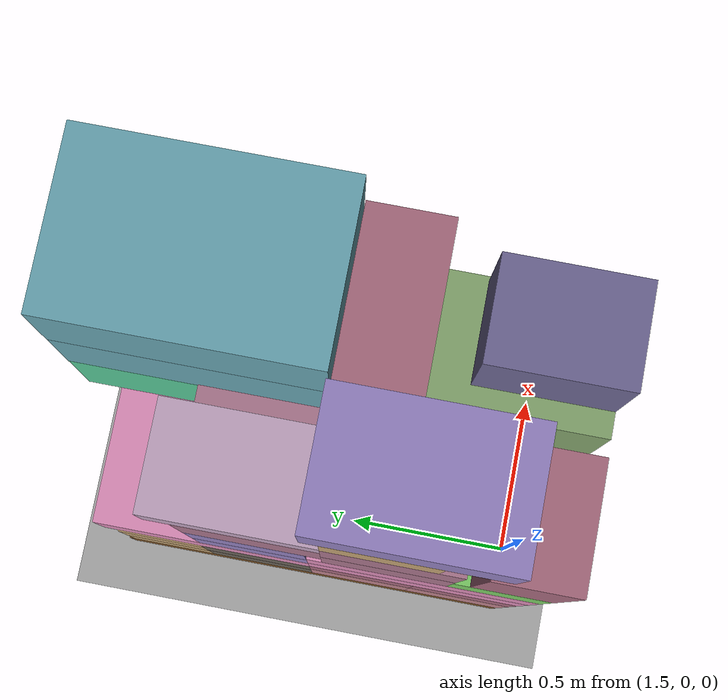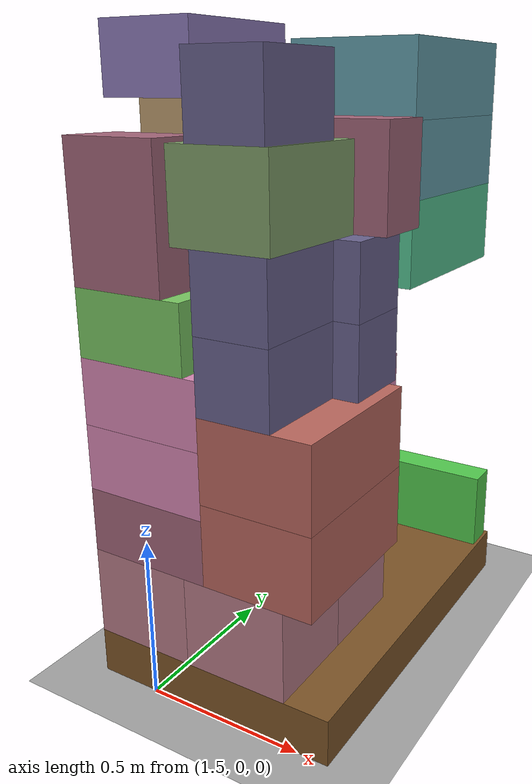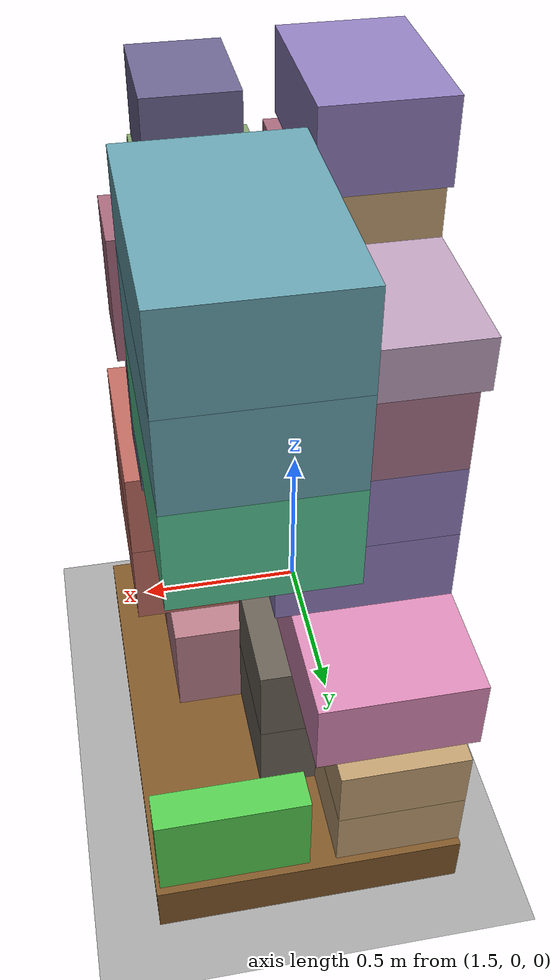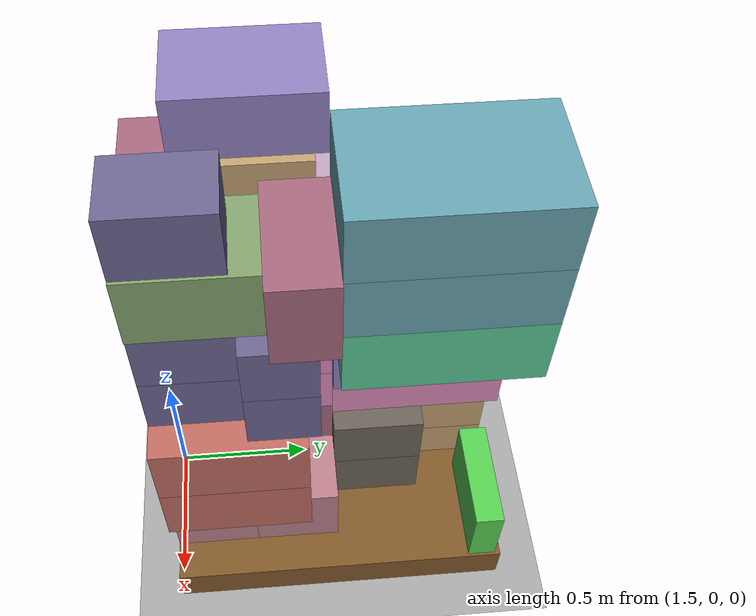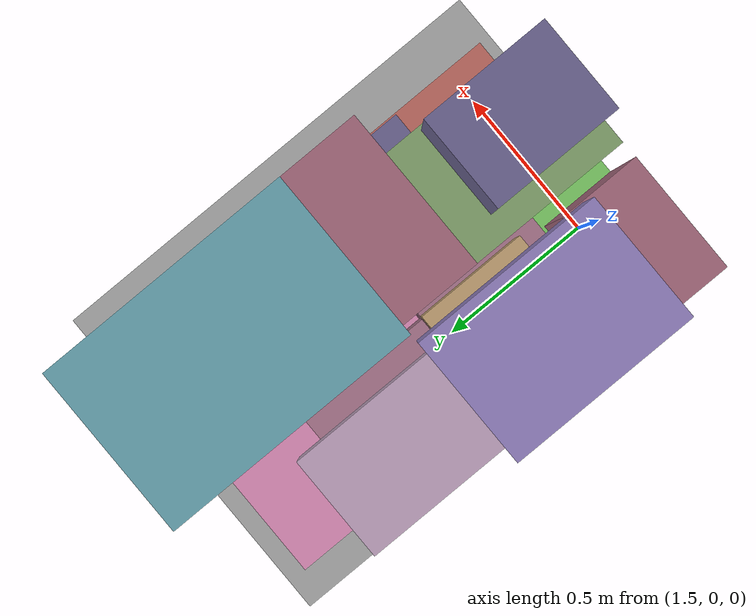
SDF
<sdf version="1.10">
 <world name="pallet_towers">
  <model name="ground_plane">
   <static>true</static>
   <link name="link">
    <collision name="collision">
     <geometry><plane><normal>0 0 1</normal><size>30 30</size></plane></geometry>
     <surface>
      <friction><ode><mu>0.55</mu><mu2>0.55</mu2></ode></friction>
      <bounce><restitution_coefficient>0</restitution_coefficient><threshold>100000</threshold></bounce>
      <contact><ode><kp>1000000</kp><kd>100</kd><max_vel>1</max_vel><min_depth>0.0005</min_depth></ode></contact>
     </surface>
    </collision>
    <visual name="visual">
     <geometry><plane><normal>0 0 1</normal><size>30 30</size></plane></geometry>
     <material><ambient>0.65 0.65 0.65 1</ambient><diffuse>0.65 0.65 0.65 1</diffuse></material>
    </visual>
   </link>
  </model>
  <model name="pallet_02_P02">
   <static>false</static>
   <pose>1.7 0.6 0.072 0 0 0</pose>
   <link name="body">
    <inertial>
     <mass>25</mass>
     <inertia>
      <ixx>3.0432</ixx>
      <ixy>0</ixy>
      <ixz>0</ixz>
      <iyy>1.37653333</iyy>
      <iyz>0</iyz>
      <izz>4.33333333</izz>
     </inertia>
    </inertial>
    <collision name="collision">
     <geometry><box><size>0.8 1.2 0.144</size></box></geometry>
     <surface>
      <friction><ode><mu>0.55</mu><mu2>0.55</mu2></ode></friction>
      <bounce><restitution_coefficient>0</restitution_coefficient><threshold>100000</threshold></bounce>
      <contact><ode><kp>1000000</kp><kd>100</kd><max_vel>1</max_vel><min_depth>0.0005</min_depth></ode></contact>
     </surface>
    </collision>
    <visual name="visual">
     <geometry><box><size>0.8 1.2 0.144</size></box></geometry>
     <material>
      <ambient>0.5 0.34 0.16 1</ambient>
      <diffuse>0.5 0.34 0.16 1</diffuse>
      <specular>0.05 0.05 0.05 1</specular>
     </material>
    </visual>
   </link>
  </model>
  <model name="box_p02_0001_EGGS_001_EGGS">
   <static>false</static>
   <pose>1.465 0.15 0.284 0 0 0</pose>
   <link name="body">
    <inertial>
     <mass>18</mass>
     <inertia><ixx>0.2526</ixx><ixy>0</ixy><ixz>0</ixz><iyy>0.28095</iyy><iyz>0</iyz><izz>0.29835</izz></inertia>
    </inertial>
    <collision name="collision">
     <geometry><box><size>0.33 0.3 0.28</size></box></geometry>
     <surface>
      <friction><ode><mu>0.55</mu><mu2>0.55</mu2></ode></friction>
      <bounce><restitution_coefficient>0</restitution_coefficient><threshold>100000</threshold></bounce>
      <contact><ode><kp>1000000</kp><kd>100</kd><max_vel>1</max_vel><min_depth>0.0005</min_depth></ode></contact>
     </surface>
    </collision>
    <visual name="visual">
     <geometry><box><size>0.33 0.3 0.28</size></box></geometry>
     <material>
      <ambient>0.725490196 0.494117647 0.537254902 1</ambient>
      <diffuse>0.725490196 0.494117647 0.537254902 1</diffuse>
      <specular>0.05 0.05 0.05 1</specular>
     </material>
    </visual>
   </link>
  </model>
  <model name="box_p02_0002_EGGS_002_EGGS">
   <static>false</static>
   <pose>1.795 0.15 0.284 0 0 0</pose>
   <link name="body">
    <inertial>
     <mass>18</mass>
     <inertia><ixx>0.2526</ixx><ixy>0</ixy><ixz>0</ixz><iyy>0.28095</iyy><iyz>0</iyz><izz>0.29835</izz></inertia>
    </inertial>
    <collision name="collision">
     <geometry><box><size>0.33 0.3 0.28</size></box></geometry>
     <surface>
      <friction><ode><mu>0.55</mu><mu2>0.55</mu2></ode></friction>
      <bounce><restitution_coefficient>0</restitution_coefficient><threshold>100000</threshold></bounce>
      <contact><ode><kp>1000000</kp><kd>100</kd><max_vel>1</max_vel><min_depth>0.0005</min_depth></ode></contact>
     </surface>
    </collision>
    <visual name="visual">
     <geometry><box><size>0.33 0.3 0.28</size></box></geometry>
     <material>
      <ambient>0.725490196 0.494117647 0.537254902 1</ambient>
      <diffuse>0.725490196 0.494117647 0.537254902 1</diffuse>
      <specular>0.05 0.05 0.05 1</specular>
     </material>
    </visual>
   </link>
  </model>
  <model name="box_p02_0003_EGGS_003_EGGS">
   <static>false</static>
   <pose>1.465 0.45 0.284 0 0 0</pose>
   <link name="body">
    <inertial>
     <mass>18</mass>
     <inertia><ixx>0.2526</ixx><ixy>0</ixy><ixz>0</ixz><iyy>0.28095</iyy><iyz>0</iyz><izz>0.29835</izz></inertia>
    </inertial>
    <collision name="collision">
     <geometry><box><size>0.33 0.3 0.28</size></box></geometry>
     <surface>
      <friction><ode><mu>0.55</mu><mu2>0.55</mu2></ode></friction>
      <bounce><restitution_coefficient>0</restitution_coefficient><threshold>100000</threshold></bounce>
      <contact><ode><kp>1000000</kp><kd>100</kd><max_vel>1</max_vel><min_depth>0.0005</min_depth></ode></contact>
     </surface>
    </collision>
    <visual name="visual">
     <geometry><box><size>0.33 0.3 0.28</size></box></geometry>
     <material>
      <ambient>0.725490196 0.494117647 0.537254902 1</ambient>
      <diffuse>0.725490196 0.494117647 0.537254902 1</diffuse>
      <specular>0.05 0.05 0.05 1</specular>
     </material>
    </visual>
   </link>
  </model>
  <model name="box_p02_0004_EGGS_004_EGGS">
   <static>false</static>
   <pose>1.795 0.45 0.284 0 0 0</pose>
   <link name="body">
    <inertial>
     <mass>18</mass>
     <inertia><ixx>0.2526</ixx><ixy>0</ixy><ixz>0</ixz><iyy>0.28095</iyy><iyz>0</iyz><izz>0.29835</izz></inertia>
    </inertial>
    <collision name="collision">
     <geometry><box><size>0.33 0.3 0.28</size></box></geometry>
     <surface>
      <friction><ode><mu>0.55</mu><mu2>0.55</mu2></ode></friction>
      <bounce><restitution_coefficient>0</restitution_coefficient><threshold>100000</threshold></bounce>
      <contact><ode><kp>1000000</kp><kd>100</kd><max_vel>1</max_vel><min_depth>0.0005</min_depth></ode></contact>
     </surface>
    </collision>
    <visual name="visual">
     <geometry><box><size>0.33 0.3 0.28</size></box></geometry>
     <material>
      <ambient>0.725490196 0.494117647 0.537254902 1</ambient>
      <diffuse>0.725490196 0.494117647 0.537254902 1</diffuse>
      <specular>0.05 0.05 0.05 1</specular>
     </material>
    </visual>
   </link>
  </model>
  <model name="box_p02_0005_FLOUR_001_FLOUR">
   <static>false</static>
   <pose>1.54 0.76 0.254 0 0 0</pose>
   <link name="body">
    <inertial>
     <mass>15</mass>
     <inertia><ixx>0.1885</ixx><ixy>0</ixy><ixz>0</ixz><iyy>0.3485</iyy><iyz>0</iyz><izz>0.416</izz></inertia>
    </inertial>
    <collision name="collision">
     <geometry><box><size>0.48 0.32 0.22</size></box></geometry>
     <surface>
      <friction><ode><mu>0.55</mu><mu2>0.55</mu2></ode></friction>
      <bounce><restitution_coefficient>0</restitution_coefficient><threshold>100000</threshold></bounce>
      <contact><ode><kp>1000000</kp><kd>100</kd><max_vel>1</max_vel><min_depth>0.0005</min_depth></ode></contact>
     </surface>
    </collision>
    <visual name="visual">
     <geometry><box><size>0.48 0.32 0.22</size></box></geometry>
     <material>
      <ambient>0.411764706 0.380392157 0.341176471 1</ambient>
      <diffuse>0.411764706 0.380392157 0.341176471 1</diffuse>
      <specular>0.05 0.05 0.05 1</specular>
     </material>
    </visual>
   </link>
  </model>
  <model name="box_p02_0007_FLOUR_003_FLOUR">
   <static>false</static>
   <pose>1.54 0.76 0.474 0 0 0</pose>
   <link name="body">
    <inertial>
     <mass>15</mass>
     <inertia><ixx>0.1885</ixx><ixy>0</ixy><ixz>0</ixz><iyy>0.3485</iyy><iyz>0</iyz><izz>0.416</izz></inertia>
    </inertial>
    <collision name="collision">
     <geometry><box><size>0.48 0.32 0.22</size></box></geometry>
     <surface>
      <friction><ode><mu>0.55</mu><mu2>0.55</mu2></ode></friction>
      <bounce><restitution_coefficient>0</restitution_coefficient><threshold>100000</threshold></bounce>
      <contact><ode><kp>1000000</kp><kd>100</kd><max_vel>1</max_vel><min_depth>0.0005</min_depth></ode></contact>
     </surface>
    </collision>
    <visual name="visual">
     <geometry><box><size>0.48 0.32 0.22</size></box></geometry>
     <material>
      <ambient>0.411764706 0.380392157 0.341176471 1</ambient>
      <diffuse>0.411764706 0.380392157 0.341176471 1</diffuse>
      <specular>0.05 0.05 0.05 1</specular>
     </material>
    </visual>
   </link>
  </model>
  <model name="box_p02_0008_HONEY_001_HONEY">
   <static>false</static>
   <pose>1.465 1.05 0.229 0 0 0</pose>
   <link name="body">
    <inertial>
     <mass>8</mass>
     <inertia>
      <ixx>0.0643333333</ixx>
      <ixy>0</ixy>
      <ixz>0</ixz>
      <iyy>0.0918666667</iyy>
      <iyz>0</iyz>
      <izz>0.117666667</izz>
     </inertia>
    </inertial>
    <collision name="collision">
     <geometry><box><size>0.33 0.26 0.17</size></box></geometry>
     <surface>
      <friction><ode><mu>0.55</mu><mu2>0.55</mu2></ode></friction>
      <bounce><restitution_coefficient>0</restitution_coefficient><threshold>100000</threshold></bounce>
      <contact><ode><kp>1000000</kp><kd>100</kd><max_vel>1</max_vel><min_depth>0.0005</min_depth></ode></contact>
     </surface>
    </collision>
    <visual name="visual">
     <geometry><box><size>0.33 0.26 0.17</size></box></geometry>
     <material>
      <ambient>0.752941176 0.623529412 0.443137255 1</ambient>
      <diffuse>0.752941176 0.623529412 0.443137255 1</diffuse>
      <specular>0.05 0.05 0.05 1</specular>
     </material>
    </visual>
   </link>
  </model>
  <model name="box_p02_0009_HONEY_002_HONEY">
   <static>false</static>
   <pose>1.465 1.05 0.399 0 0 0</pose>
   <link name="body">
    <inertial>
     <mass>8</mass>
     <inertia>
      <ixx>0.0643333333</ixx>
      <ixy>0</ixy>
      <ixz>0</ixz>
      <iyy>0.0918666667</iyy>
      <iyz>0</iyz>
      <izz>0.117666667</izz>
     </inertia>
    </inertial>
    <collision name="collision">
     <geometry><box><size>0.33 0.26 0.17</size></box></geometry>
     <surface>
      <friction><ode><mu>0.55</mu><mu2>0.55</mu2></ode></friction>
      <bounce><restitution_coefficient>0</restitution_coefficient><threshold>100000</threshold></bounce>
      <contact><ode><kp>1000000</kp><kd>100</kd><max_vel>1</max_vel><min_depth>0.0005</min_depth></ode></contact>
     </surface>
    </collision>
    <visual name="visual">
     <geometry><box><size>0.33 0.26 0.17</size></box></geometry>
     <material>
      <ambient>0.752941176 0.623529412 0.443137255 1</ambient>
      <diffuse>0.752941176 0.623529412 0.443137255 1</diffuse>
      <specular>0.05 0.05 0.05 1</specular>
     </material>
    </visual>
   </link>
  </model>
  <model name="box_p02_0011_ICECRM_002_ICECRM">
   <static>false</static>
   <pose>1.5 0.15 0.524 0 0 0</pose>
   <link name="body">
    <inertial>
     <mass>8</mass>
     <inertia>
      <ixx>0.0866666667</ixx>
      <ixy>0</ixy>
      <ixz>0</ixz>
      <iyy>0.133333333</iyy>
      <iyz>0</iyz>
      <izz>0.166666667</izz>
     </inertia>
    </inertial>
    <collision name="collision">
     <geometry><box><size>0.4 0.3 0.2</size></box></geometry>
     <surface>
      <friction><ode><mu>0.55</mu><mu2>0.55</mu2></ode></friction>
      <bounce><restitution_coefficient>0</restitution_coefficient><threshold>100000</threshold></bounce>
      <contact><ode><kp>1000000</kp><kd>100</kd><max_vel>1</max_vel><min_depth>0.0005</min_depth></ode></contact>
     </surface>
    </collision>
    <visual name="visual">
     <geometry><box><size>0.4 0.3 0.2</size></box></geometry>
     <material>
      <ambient>0.643137255 0.403921569 0.482352941 1</ambient>
      <diffuse>0.643137255 0.403921569 0.482352941 1</diffuse>
      <specular>0.05 0.05 0.05 1</specular>
     </material>
    </visual>
   </link>
  </model>
  <model name="box_p02_0012_ICECRM_003_ICECRM">
   <static>false</static>
   <pose>1.5 0.45 0.524 0 0 0</pose>
   <link name="body">
    <inertial>
     <mass>8</mass>
     <inertia>
      <ixx>0.0866666667</ixx>
      <ixy>0</ixy>
      <ixz>0</ixz>
      <iyy>0.133333333</iyy>
      <iyz>0</iyz>
      <izz>0.166666667</izz>
     </inertia>
    </inertial>
    <collision name="collision">
     <geometry><box><size>0.4 0.3 0.2</size></box></geometry>
     <surface>
      <friction><ode><mu>0.55</mu><mu2>0.55</mu2></ode></friction>
      <bounce><restitution_coefficient>0</restitution_coefficient><threshold>100000</threshold></bounce>
      <contact><ode><kp>1000000</kp><kd>100</kd><max_vel>1</max_vel><min_depth>0.0005</min_depth></ode></contact>
     </surface>
    </collision>
    <visual name="visual">
     <geometry><box><size>0.4 0.3 0.2</size></box></geometry>
     <material>
      <ambient>0.643137255 0.403921569 0.482352941 1</ambient>
      <diffuse>0.643137255 0.403921569 0.482352941 1</diffuse>
      <specular>0.05 0.05 0.05 1</specular>
     </material>
    </visual>
   </link>
  </model>
  <model name="box_p02_0013_ONION_001_ONION">
   <static>false</static>
   <pose>1.875 0.25 0.549 0 0 0</pose>
   <link name="body">
    <inertial>
     <mass>10</mass>
     <inertia>
      <ixx>0.260416667</ixx>
      <ixy>0</ixy>
      <ixz>0</ixz>
      <iyy>0.154166667</iyy>
      <iyz>0</iyz>
      <izz>0.310416667</izz>
     </inertia>
    </inertial>
    <collision name="collision">
     <geometry><box><size>0.35 0.5 0.25</size></box></geometry>
     <surface>
      <friction><ode><mu>0.55</mu><mu2>0.55</mu2></ode></friction>
      <bounce><restitution_coefficient>0</restitution_coefficient><threshold>100000</threshold></bounce>
      <contact><ode><kp>1000000</kp><kd>100</kd><max_vel>1</max_vel><min_depth>0.0005</min_depth></ode></contact>
     </surface>
    </collision>
    <visual name="visual">
     <geometry><box><size>0.35 0.5 0.25</size></box></geometry>
     <material>
      <ambient>0.741176471 0.411764706 0.376470588 1</ambient>
      <diffuse>0.741176471 0.411764706 0.376470588 1</diffuse>
      <specular>0.05 0.05 0.05 1</specular>
     </material>
    </visual>
   </link>
  </model>
  <model name="box_p02_0014_ONION_002_ONION">
   <static>false</static>
   <pose>1.875 0.25 0.799 0 0 0</pose>
   <link name="body">
    <inertial>
     <mass>10</mass>
     <inertia>
      <ixx>0.260416667</ixx>
      <ixy>0</ixy>
      <ixz>0</ixz>
      <iyy>0.154166667</iyy>
      <iyz>0</iyz>
      <izz>0.310416667</izz>
     </inertia>
    </inertial>
    <collision name="collision">
     <geometry><box><size>0.35 0.5 0.25</size></box></geometry>
     <surface>
      <friction><ode><mu>0.55</mu><mu2>0.55</mu2></ode></friction>
      <bounce><restitution_coefficient>0</restitution_coefficient><threshold>100000</threshold></bounce>
      <contact><ode><kp>1000000</kp><kd>100</kd><max_vel>1</max_vel><min_depth>0.0005</min_depth></ode></contact>
     </surface>
    </collision>
    <visual name="visual">
     <geometry><box><size>0.35 0.5 0.25</size></box></geometry>
     <material>
      <ambient>0.741176471 0.411764706 0.376470588 1</ambient>
      <diffuse>0.741176471 0.411764706 0.376470588 1</diffuse>
      <specular>0.05 0.05 0.05 1</specular>
     </material>
    </visual>
   </link>
  </model>
  <model name="box_p02_0015_POTATO_001_POTATO">
   <static>false</static>
   <pose>1.5 0.3 0.724 0 0 0</pose>
   <link name="body">
    <inertial>
     <mass>25</mass>
     <inertia>
      <ixx>0.833333333</ixx>
      <ixy>0</ixy>
      <ixz>0</ixz>
      <iyy>0.416666667</iyy>
      <iyz>0</iyz>
      <izz>1.08333333</izz>
     </inertia>
    </inertial>
    <collision name="collision">
     <geometry><box><size>0.4 0.6 0.2</size></box></geometry>
     <surface>
      <friction><ode><mu>0.55</mu><mu2>0.55</mu2></ode></friction>
      <bounce><restitution_coefficient>0</restitution_coefficient><threshold>100000</threshold></bounce>
      <contact><ode><kp>1000000</kp><kd>100</kd><max_vel>1</max_vel><min_depth>0.0005</min_depth></ode></contact>
     </surface>
    </collision>
    <visual name="visual">
     <geometry><box><size>0.4 0.6 0.2</size></box></geometry>
     <material>
      <ambient>0.854901961 0.541176471 0.71372549 1</ambient>
      <diffuse>0.854901961 0.541176471 0.71372549 1</diffuse>
      <specular>0.05 0.05 0.05 1</specular>
     </material>
    </visual>
   </link>
  </model>
  <model name="box_p02_0016_POTATO_002_POTATO">
   <static>false</static>
   <pose>1.5 0.3 0.924 0 0 0</pose>
   <link name="body">
    <inertial>
     <mass>25</mass>
     <inertia>
      <ixx>0.833333333</ixx>
      <ixy>0</ixy>
      <ixz>0</ixz>
      <iyy>0.416666667</iyy>
      <iyz>0</iyz>
      <izz>1.08333333</izz>
     </inertia>
    </inertial>
    <collision name="collision">
     <geometry><box><size>0.4 0.6 0.2</size></box></geometry>
     <surface>
      <friction><ode><mu>0.55</mu><mu2>0.55</mu2></ode></friction>
      <bounce><restitution_coefficient>0</restitution_coefficient><threshold>100000</threshold></bounce>
      <contact><ode><kp>1000000</kp><kd>100</kd><max_vel>1</max_vel><min_depth>0.0005</min_depth></ode></contact>
     </surface>
    </collision>
    <visual name="visual">
     <geometry><box><size>0.4 0.6 0.2</size></box></geometry>
     <material>
      <ambient>0.854901961 0.541176471 0.71372549 1</ambient>
      <diffuse>0.854901961 0.541176471 0.71372549 1</diffuse>
      <specular>0.05 0.05 0.05 1</specular>
     </material>
    </visual>
   </link>
  </model>
  <model name="box_p02_0017_POTATO_003_POTATO">
   <static>false</static>
   <pose>1.5 0.9 0.684 0 0 0</pose>
   <link name="body">
    <inertial>
     <mass>25</mass>
     <inertia>
      <ixx>0.833333333</ixx>
      <ixy>0</ixy>
      <ixz>0</ixz>
      <iyy>0.416666667</iyy>
      <iyz>0</iyz>
      <izz>1.08333333</izz>
     </inertia>
    </inertial>
    <collision name="collision">
     <geometry><box><size>0.4 0.6 0.2</size></box></geometry>
     <surface>
      <friction><ode><mu>0.55</mu><mu2>0.55</mu2></ode></friction>
      <bounce><restitution_coefficient>0</restitution_coefficient><threshold>100000</threshold></bounce>
      <contact><ode><kp>1000000</kp><kd>100</kd><max_vel>1</max_vel><min_depth>0.0005</min_depth></ode></contact>
     </surface>
    </collision>
    <visual name="visual">
     <geometry><box><size>0.4 0.6 0.2</size></box></geometry>
     <material>
      <ambient>0.854901961 0.541176471 0.71372549 1</ambient>
      <diffuse>0.854901961 0.541176471 0.71372549 1</diffuse>
      <specular>0.05 0.05 0.05 1</specular>
     </material>
    </visual>
   </link>
  </model>
  <model name="box_p02_0020_RICE_003_RICE">
   <static>false</static>
   <pose>1.52 0.75 0.884 0 0 0</pose>
   <link name="body">
    <inertial>
     <mass>20</mass>
     <inertia>
      <ixx>0.216666667</ixx>
      <ixy>0</ixy>
      <ixz>0</ixz>
      <iyy>0.389333333</iyy>
      <iyz>0</iyz>
      <izz>0.472666667</izz>
     </inertia>
    </inertial>
    <collision name="collision">
     <geometry><box><size>0.44 0.3 0.2</size></box></geometry>
     <surface>
      <friction><ode><mu>0.55</mu><mu2>0.55</mu2></ode></friction>
      <bounce><restitution_coefficient>0</restitution_coefficient><threshold>100000</threshold></bounce>
      <contact><ode><kp>1000000</kp><kd>100</kd><max_vel>1</max_vel><min_depth>0.0005</min_depth></ode></contact>
     </surface>
    </collision>
    <visual name="visual">
     <geometry><box><size>0.44 0.3 0.2</size></box></geometry>
     <material>
      <ambient>0.564705882 0.494117647 0.741176471 1</ambient>
      <diffuse>0.564705882 0.494117647 0.741176471 1</diffuse>
      <specular>0.05 0.05 0.05 1</specular>
     </material>
    </visual>
   </link>
  </model>
  <model name="box_p02_0021_RICE_004_RICE">
   <static>false</static>
   <pose>1.52 0.75 1.084 0 0 0</pose>
   <link name="body">
    <inertial>
     <mass>20</mass>
     <inertia>
      <ixx>0.216666667</ixx>
      <ixy>0</ixy>
      <ixz>0</ixz>
      <iyy>0.389333333</iyy>
      <iyz>0</iyz>
      <izz>0.472666667</izz>
     </inertia>
    </inertial>
    <collision name="collision">
     <geometry><box><size>0.44 0.3 0.2</size></box></geometry>
     <surface>
      <friction><ode><mu>0.55</mu><mu2>0.55</mu2></ode></friction>
      <bounce><restitution_coefficient>0</restitution_coefficient><threshold>100000</threshold></bounce>
      <contact><ode><kp>1000000</kp><kd>100</kd><max_vel>1</max_vel><min_depth>0.0005</min_depth></ode></contact>
     </surface>
    </collision>
    <visual name="visual">
     <geometry><box><size>0.44 0.3 0.2</size></box></geometry>
     <material>
      <ambient>0.564705882 0.494117647 0.741176471 1</ambient>
      <diffuse>0.564705882 0.494117647 0.741176471 1</diffuse>
      <specular>0.05 0.05 0.05 1</specular>
     </material>
    </visual>
   </link>
  </model>
  <model name="box_p02_0022_SUGAR_001_SUGAR">
   <static>false</static>
   <pose>1.815 0.155 1.034 0 0 0</pose>
   <link name="body">
    <inertial>
     <mass>10</mass>
     <inertia>
      <ixx>0.120416667</ixx>
      <ixy>0</ixy>
      <ixz>0</ixz>
      <iyy>0.0844166667</iyy>
      <iyz>0</iyz>
      <izz>0.124166667</izz>
     </inertia>
    </inertial>
    <collision name="collision">
     <geometry><box><size>0.23 0.31 0.22</size></box></geometry>
     <surface>
      <friction><ode><mu>0.55</mu><mu2>0.55</mu2></ode></friction>
      <bounce><restitution_coefficient>0</restitution_coefficient><threshold>100000</threshold></bounce>
      <contact><ode><kp>1000000</kp><kd>100</kd><max_vel>1</max_vel><min_depth>0.0005</min_depth></ode></contact>
     </surface>
    </collision>
    <visual name="visual">
     <geometry><box><size>0.23 0.31 0.22</size></box></geometry>
     <material>
      <ambient>0.419607843 0.392156863 0.564705882 1</ambient>
      <diffuse>0.419607843 0.392156863 0.564705882 1</diffuse>
      <specular>0.05 0.05 0.05 1</specular>
     </material>
    </visual>
   </link>
  </model>
  <model name="box_p02_0023_SUGAR_002_SUGAR">
   <static>false</static>
   <pose>1.855 0.425 1.034 0 0 0</pose>
   <link name="body">
    <inertial>
     <mass>10</mass>
     <inertia>
      <ixx>0.0844166667</ixx>
      <ixy>0</ixy>
      <ixz>0</ixz>
      <iyy>0.120416667</iyy>
      <iyz>0</iyz>
      <izz>0.124166667</izz>
     </inertia>
    </inertial>
    <collision name="collision">
     <geometry><box><size>0.31 0.23 0.22</size></box></geometry>
     <surface>
      <friction><ode><mu>0.55</mu><mu2>0.55</mu2></ode></friction>
      <bounce><restitution_coefficient>0</restitution_coefficient><threshold>100000</threshold></bounce>
      <contact><ode><kp>1000000</kp><kd>100</kd><max_vel>1</max_vel><min_depth>0.0005</min_depth></ode></contact>
     </surface>
    </collision>
    <visual name="visual">
     <geometry><box><size>0.31 0.23 0.22</size></box></geometry>
     <material>
      <ambient>0.419607843 0.392156863 0.564705882 1</ambient>
      <diffuse>0.419607843 0.392156863 0.564705882 1</diffuse>
      <specular>0.05 0.05 0.05 1</specular>
     </material>
    </visual>
   </link>
  </model>
  <model name="box_p02_0025_SUGAR_004_SUGAR">
   <static>false</static>
   <pose>1.815 0.155 1.254 0 0 0</pose>
   <link name="body">
    <inertial>
     <mass>10</mass>
     <inertia>
      <ixx>0.120416667</ixx>
      <ixy>0</ixy>
      <ixz>0</ixz>
      <iyy>0.0844166667</iyy>
      <iyz>0</iyz>
      <izz>0.124166667</izz>
     </inertia>
    </inertial>
    <collision name="collision">
     <geometry><box><size>0.23 0.31 0.22</size></box></geometry>
     <surface>
      <friction><ode><mu>0.55</mu><mu2>0.55</mu2></ode></friction>
      <bounce><restitution_coefficient>0</restitution_coefficient><threshold>100000</threshold></bounce>
      <contact><ode><kp>1000000</kp><kd>100</kd><max_vel>1</max_vel><min_depth>0.0005</min_depth></ode></contact>
     </surface>
    </collision>
    <visual name="visual">
     <geometry><box><size>0.23 0.31 0.22</size></box></geometry>
     <material>
      <ambient>0.419607843 0.392156863 0.564705882 1</ambient>
      <diffuse>0.419607843 0.392156863 0.564705882 1</diffuse>
      <specular>0.05 0.05 0.05 1</specular>
     </material>
    </visual>
   </link>
  </model>
  <model name="box_p02_0027_TEA_002_TEA">
   <static>false</static>
   <pose>1.48 0.12 1.124 0 0 0</pose>
   <link name="body">
    <inertial>
     <mass>5</mass>
     <inertia>
      <ixx>0.0406666667</ixx>
      <ixy>0</ixy>
      <ixz>0</ixz>
      <iyy>0.0706666667</iyy>
      <iyz>0</iyz>
      <izz>0.078</izz>
     </inertia>
    </inertial>
    <collision name="collision">
     <geometry><box><size>0.36 0.24 0.2</size></box></geometry>
     <surface>
      <friction><ode><mu>0.55</mu><mu2>0.55</mu2></ode></friction>
      <bounce><restitution_coefficient>0</restitution_coefficient><threshold>100000</threshold></bounce>
      <contact><ode><kp>1000000</kp><kd>100</kd><max_vel>1</max_vel><min_depth>0.0005</min_depth></ode></contact>
     </surface>
    </collision>
    <visual name="visual">
     <geometry><box><size>0.36 0.24 0.2</size></box></geometry>
     <material>
      <ambient>0.478431373 0.788235294 0.388235294 1</ambient>
      <diffuse>0.478431373 0.788235294 0.388235294 1</diffuse>
      <specular>0.05 0.05 0.05 1</specular>
     </material>
    </visual>
   </link>
  </model>
  <model name="box_p02_0028_WINE_001_WINE">
   <static>false</static>
   <pose>1.47 0.4 1.154 0 0 0</pose>
   <link name="body">
    <inertial>
     <mass>18</mass>
     <inertia><ixx>0.255</ixx><ixy>0</ixy><ixz>0</ixz><iyy>0.2748</iyy><iyz>0</iyz><izz>0.327</izz></inertia>
    </inertial>
    <collision name="collision">
     <geometry><box><size>0.34 0.32 0.26</size></box></geometry>
     <surface>
      <friction><ode><mu>0.55</mu><mu2>0.55</mu2></ode></friction>
      <bounce><restitution_coefficient>0</restitution_coefficient><threshold>100000</threshold></bounce>
      <contact><ode><kp>1000000</kp><kd>100</kd><max_vel>1</max_vel><min_depth>0.0005</min_depth></ode></contact>
     </surface>
    </collision>
    <visual name="visual">
     <geometry><box><size>0.34 0.32 0.26</size></box></geometry>
     <material>
      <ambient>0.654901961 0.450980392 0.541176471 1</ambient>
      <diffuse>0.654901961 0.450980392 0.541176471 1</diffuse>
      <specular>0.05 0.05 0.05 1</specular>
     </material>
    </visual>
   </link>
  </model>
  <model name="box_p02_0029_WINE_002_WINE">
   <static>false</static>
   <pose>1.47 0.4 1.414 0 0 0</pose>
   <link name="body">
    <inertial>
     <mass>18</mass>
     <inertia><ixx>0.255</ixx><ixy>0</ixy><ixz>0</ixz><iyy>0.2748</iyy><iyz>0</iyz><izz>0.327</izz></inertia>
    </inertial>
    <collision name="collision">
     <geometry><box><size>0.34 0.32 0.26</size></box></geometry>
     <surface>
      <friction><ode><mu>0.55</mu><mu2>0.55</mu2></ode></friction>
      <bounce><restitution_coefficient>0</restitution_coefficient><threshold>100000</threshold></bounce>
      <contact><ode><kp>1000000</kp><kd>100</kd><max_vel>1</max_vel><min_depth>0.0005</min_depth></ode></contact>
     </surface>
    </collision>
    <visual name="visual">
     <geometry><box><size>0.34 0.32 0.26</size></box></geometry>
     <material>
      <ambient>0.654901961 0.450980392 0.541176471 1</ambient>
      <diffuse>0.654901961 0.450980392 0.541176471 1</diffuse>
      <specular>0.05 0.05 0.05 1</specular>
     </material>
    </visual>
   </link>
  </model>
  <model name="box_p02_0030_WINE_003_WINE">
   <static>false</static>
   <pose>1.46 0.73 1.314 0 0 0</pose>
   <link name="body">
    <inertial>
     <mass>18</mass>
     <inertia><ixx>0.2748</ixx><ixy>0</ixy><ixz>0</ixz><iyy>0.255</iyy><iyz>0</iyz><izz>0.327</izz></inertia>
    </inertial>
    <collision name="collision">
     <geometry><box><size>0.32 0.34 0.26</size></box></geometry>
     <surface>
      <friction><ode><mu>0.55</mu><mu2>0.55</mu2></ode></friction>
      <bounce><restitution_coefficient>0</restitution_coefficient><threshold>100000</threshold></bounce>
      <contact><ode><kp>1000000</kp><kd>100</kd><max_vel>1</max_vel><min_depth>0.0005</min_depth></ode></contact>
     </surface>
    </collision>
    <visual name="visual">
     <geometry><box><size>0.32 0.34 0.26</size></box></geometry>
     <material>
      <ambient>0.654901961 0.450980392 0.541176471 1</ambient>
      <diffuse>0.654901961 0.450980392 0.541176471 1</diffuse>
      <specular>0.05 0.05 0.05 1</specular>
     </material>
    </visual>
   </link>
  </model>
  <model name="box_p02_0031_YOGURT_001_YOGURT">
   <static>false</static>
   <pose>1.895 1.13 0.274 0 0 0</pose>
   <link name="body">
    <inertial>
     <mass>5</mass>
     <inertia>
      <ixx>0.0323333333</ixx>
      <ixy>0</ixy>
      <ixz>0</ixz>
      <iyy>0.0915416667</iyy>
      <iyz>0</iyz>
      <izz>0.0675416667</izz>
     </inertia>
    </inertial>
    <collision name="collision">
     <geometry><box><size>0.39 0.1 0.26</size></box></geometry>
     <surface>
      <friction><ode><mu>0.55</mu><mu2>0.55</mu2></ode></friction>
      <bounce><restitution_coefficient>0</restitution_coefficient><threshold>100000</threshold></bounce>
      <contact><ode><kp>1000000</kp><kd>100</kd><max_vel>1</max_vel><min_depth>0.0005</min_depth></ode></contact>
     </surface>
    </collision>
    <visual name="visual">
     <geometry><box><size>0.39 0.1 0.26</size></box></geometry>
     <material>
      <ambient>0.329411765 0.803921569 0.31372549 1</ambient>
      <diffuse>0.329411765 0.803921569 0.31372549 1</diffuse>
      <specular>0.05 0.05 0.05 1</specular>
     </material>
    </visual>
   </link>
  </model>
  <model name="box_p02_0035_DIAPER_002_DIAPER">
   <static>false</static>
   <pose>1.82 0.9 1.309 0 0 0</pose>
   <link name="body">
    <inertial>
     <mass>7</mass>
     <inertia>
      <ixx>0.246458333</ixx>
      <ixy>0</ixy>
      <ixz>0</ixz>
      <iyy>0.129791667</iyy>
      <iyz>0</iyz>
      <izz>0.303333333</izz>
     </inertia>
    </inertial>
    <collision name="collision">
     <geometry><box><size>0.4 0.6 0.25</size></box></geometry>
     <surface>
      <friction><ode><mu>0.55</mu><mu2>0.55</mu2></ode></friction>
      <bounce><restitution_coefficient>0</restitution_coefficient><threshold>100000</threshold></bounce>
      <contact><ode><kp>1000000</kp><kd>100</kd><max_vel>1</max_vel><min_depth>0.0005</min_depth></ode></contact>
     </surface>
    </collision>
    <visual name="visual">
     <geometry><box><size>0.4 0.6 0.25</size></box></geometry>
     <material>
      <ambient>0.337254902 0.780392157 0.584313725 1</ambient>
      <diffuse>0.337254902 0.780392157 0.584313725 1</diffuse>
      <specular>0.05 0.05 0.05 1</specular>
     </material>
    </visual>
   </link>
  </model>
  <model name="box_p02_0036_SUGAR_008_SUGAR">
   <static>false</static>
   <pose>1.855 0.425 1.254 0 0 0</pose>
   <link name="body">
    <inertial>
     <mass>10</mass>
     <inertia>
      <ixx>0.0844166667</ixx>
      <ixy>0</ixy>
      <ixz>0</ixz>
      <iyy>0.120416667</iyy>
      <iyz>0</iyz>
      <izz>0.124166667</izz>
     </inertia>
    </inertial>
    <collision name="collision">
     <geometry><box><size>0.31 0.23 0.22</size></box></geometry>
     <surface>
      <friction><ode><mu>0.55</mu><mu2>0.55</mu2></ode></friction>
      <bounce><restitution_coefficient>0</restitution_coefficient><threshold>100000</threshold></bounce>
      <contact><ode><kp>1000000</kp><kd>100</kd><max_vel>1</max_vel><min_depth>0.0005</min_depth></ode></contact>
     </surface>
    </collision>
    <visual name="visual">
     <geometry><box><size>0.31 0.23 0.22</size></box></geometry>
     <material>
      <ambient>0.419607843 0.392156863 0.564705882 1</ambient>
      <diffuse>0.419607843 0.392156863 0.564705882 1</diffuse>
      <specular>0.05 0.05 0.05 1</specular>
     </material>
    </visual>
   </link>
  </model>
  <model name="box_p02_0037_COFFEE_013_COFFEE">
   <static>false</static>
   <pose>1.79 0.2 1.489 0 0 0</pose>
   <link name="body">
    <inertial>
     <mass>13</mass>
     <inertia>
      <ixx>0.241041667</ixx>
      <ixy>0</ixy>
      <ixz>0</ixz>
      <iyy>0.165208333</iyy>
      <iyz>0</iyz>
      <izz>0.270833333</izz>
     </inertia>
    </inertial>
    <collision name="collision">
     <geometry><box><size>0.3 0.4 0.25</size></box></geometry>
     <surface>
      <friction><ode><mu>0.55</mu><mu2>0.55</mu2></ode></friction>
      <bounce><restitution_coefficient>0</restitution_coefficient><threshold>100000</threshold></bounce>
      <contact><ode><kp>1000000</kp><kd>100</kd><max_vel>1</max_vel><min_depth>0.0005</min_depth></ode></contact>
     </surface>
    </collision>
    <visual name="visual">
     <geometry><box><size>0.3 0.4 0.25</size></box></geometry>
     <material>
      <ambient>0.505882353 0.631372549 0.419607843 1</ambient>
      <diffuse>0.505882353 0.631372549 0.419607843 1</diffuse>
      <specular>0.05 0.05 0.05 1</specular>
     </material>
    </visual>
   </link>
  </model>
  <model name="box_p02_0038_APPLES_008_APPLES">
   <static>false</static>
   <pose>1.82 0.9 1.544 0 0 0</pose>
   <link name="body">
    <inertial>
     <mass>12</mass>
     <inertia><ixx>0.4084</ixx><ixy>0</ixy><ixz>0</ixz><iyy>0.2084</iyy><iyz>0</iyz><izz>0.52</izz></inertia>
    </inertial>
    <collision name="collision">
     <geometry><box><size>0.4 0.6 0.22</size></box></geometry>
     <surface>
      <friction><ode><mu>0.55</mu><mu2>0.55</mu2></ode></friction>
      <bounce><restitution_coefficient>0</restitution_coefficient><threshold>100000</threshold></bounce>
      <contact><ode><kp>1000000</kp><kd>100</kd><max_vel>1</max_vel><min_depth>0.0005</min_depth></ode></contact>
     </surface>
    </collision>
    <visual name="visual">
     <geometry><box><size>0.4 0.6 0.22</size></box></geometry>
     <material>
      <ambient>0.4 0.635294118 0.68627451 1</ambient>
      <diffuse>0.4 0.635294118 0.68627451 1</diffuse>
      <specular>0.05 0.05 0.05 1</specular>
     </material>
    </visual>
   </link>
  </model>
  <model name="box_p02_0039_APPLES_007_APPLES">
   <static>false</static>
   <pose>1.82 0.9 1.764 0 0 0</pose>
   <link name="body">
    <inertial>
     <mass>12</mass>
     <inertia><ixx>0.4084</ixx><ixy>0</ixy><ixz>0</ixz><iyy>0.2084</iyy><iyz>0</iyz><izz>0.52</izz></inertia>
    </inertial>
    <collision name="collision">
     <geometry><box><size>0.4 0.6 0.22</size></box></geometry>
     <surface>
      <friction><ode><mu>0.55</mu><mu2>0.55</mu2></ode></friction>
      <bounce><restitution_coefficient>0</restitution_coefficient><threshold>100000</threshold></bounce>
      <contact><ode><kp>1000000</kp><kd>100</kd><max_vel>1</max_vel><min_depth>0.0005</min_depth></ode></contact>
     </surface>
    </collision>
    <visual name="visual">
     <geometry><box><size>0.4 0.6 0.22</size></box></geometry>
     <material>
      <ambient>0.4 0.635294118 0.68627451 1</ambient>
      <diffuse>0.4 0.635294118 0.68627451 1</diffuse>
      <specular>0.05 0.05 0.05 1</specular>
     </material>
    </visual>
   </link>
  </model>
  <model name="box_p02_0040_ICECRM_004_ICECRM">
   <static>false</static>
   <pose>1.45 0.1 1.424 0 0 0</pose>
   <link name="body">
    <inertial>
     <mass>8</mass>
     <inertia>
      <ixx>0.133333333</ixx>
      <ixy>0</ixy>
      <ixz>0</ixz>
      <iyy>0.166666667</iyy>
      <iyz>0</iyz>
      <izz>0.0866666667</izz>
     </inertia>
    </inertial>
    <collision name="collision">
     <geometry><box><size>0.3 0.2 0.4</size></box></geometry>
     <surface>
      <friction><ode><mu>0.55</mu><mu2>0.55</mu2></ode></friction>
      <bounce><restitution_coefficient>0</restitution_coefficient><threshold>100000</threshold></bounce>
      <contact><ode><kp>1000000</kp><kd>100</kd><max_vel>1</max_vel><min_depth>0.0005</min_depth></ode></contact>
     </surface>
    </collision>
    <visual name="visual">
     <geometry><box><size>0.3 0.2 0.4</size></box></geometry>
     <material>
      <ambient>0.643137255 0.403921569 0.482352941 1</ambient>
      <diffuse>0.643137255 0.403921569 0.482352941 1</diffuse>
      <specular>0.05 0.05 0.05 1</specular>
     </material>
    </visual>
   </link>
  </model>
  <model name="box_p02_0041_BEER24_005_BEER24">
   <static>false</static>
   <pose>1.43 0.76 1.509 0 0 0</pose>
   <link name="body">
    <inertial>
     <mass>9</mass>
     <inertia><ixx>0.132675</ixx><ixy>0</ixy><ixz>0</ixz><iyy>0.063375</iyy><iyz>0</iyz><izz>0.1707</izz></inertia>
    </inertial>
    <collision name="collision">
     <geometry><box><size>0.26 0.4 0.13</size></box></geometry>
     <surface>
      <friction><ode><mu>0.55</mu><mu2>0.55</mu2></ode></friction>
      <bounce><restitution_coefficient>0</restitution_coefficient><threshold>100000</threshold></bounce>
      <contact><ode><kp>1000000</kp><kd>100</kd><max_vel>1</max_vel><min_depth>0.0005</min_depth></ode></contact>
     </surface>
    </collision>
    <visual name="visual">
     <geometry><box><size>0.26 0.4 0.13</size></box></geometry>
     <material>
      <ambient>0.741176471 0.62745098 0.737254902 1</ambient>
      <diffuse>0.741176471 0.62745098 0.737254902 1</diffuse>
      <specular>0.05 0.05 0.05 1</specular>
     </material>
    </visual>
   </link>
  </model>
  <model name="box_p02_0042_ICECRM_005_ICECRM">
   <static>false</static>
   <pose>1.84 0.5 1.514 0 0 0</pose>
   <link name="body">
    <inertial>
     <mass>8</mass>
     <inertia>
      <ixx>0.0866666667</ixx>
      <ixy>0</ixy>
      <ixz>0</ixz>
      <iyy>0.166666667</iyy>
      <iyz>0</iyz>
      <izz>0.133333333</izz>
     </inertia>
    </inertial>
    <collision name="collision">
     <geometry><box><size>0.4 0.2 0.3</size></box></geometry>
     <surface>
      <friction><ode><mu>0.55</mu><mu2>0.55</mu2></ode></friction>
      <bounce><restitution_coefficient>0</restitution_coefficient><threshold>100000</threshold></bounce>
      <contact><ode><kp>1000000</kp><kd>100</kd><max_vel>1</max_vel><min_depth>0.0005</min_depth></ode></contact>
     </surface>
    </collision>
    <visual name="visual">
     <geometry><box><size>0.4 0.2 0.3</size></box></geometry>
     <material>
      <ambient>0.643137255 0.403921569 0.482352941 1</ambient>
      <diffuse>0.643137255 0.403921569 0.482352941 1</diffuse>
      <specular>0.05 0.05 0.05 1</specular>
     </material>
    </visual>
   </link>
  </model>
  <model name="box_p02_0043_HONEY_004_HONEY">
   <static>false</static>
   <pose>1.465 0.43 1.629 0 0 0</pose>
   <link name="body">
    <inertial>
     <mass>8</mass>
     <inertia>
      <ixx>0.0643333333</ixx>
      <ixy>0</ixy>
      <ixz>0</ixz>
      <iyy>0.0918666667</iyy>
      <iyz>0</iyz>
      <izz>0.117666667</izz>
     </inertia>
    </inertial>
    <collision name="collision">
     <geometry><box><size>0.33 0.26 0.17</size></box></geometry>
     <surface>
      <friction><ode><mu>0.55</mu><mu2>0.55</mu2></ode></friction>
      <bounce><restitution_coefficient>0</restitution_coefficient><threshold>100000</threshold></bounce>
      <contact><ode><kp>1000000</kp><kd>100</kd><max_vel>1</max_vel><min_depth>0.0005</min_depth></ode></contact>
     </surface>
    </collision>
    <visual name="visual">
     <geometry><box><size>0.33 0.26 0.17</size></box></geometry>
     <material>
      <ambient>0.752941176 0.623529412 0.443137255 1</ambient>
      <diffuse>0.752941176 0.623529412 0.443137255 1</diffuse>
      <specular>0.05 0.05 0.05 1</specular>
     </material>
    </visual>
   </link>
  </model>
  <model name="box_p02_0045_SUGAR_005_SUGAR">
   <static>false</static>
   <pose>1.815 0.155 1.724 0 0 0</pose>
   <link name="body">
    <inertial>
     <mass>10</mass>
     <inertia>
      <ixx>0.120416667</ixx>
      <ixy>0</ixy>
      <ixz>0</ixz>
      <iyy>0.0844166667</iyy>
      <iyz>0</iyz>
      <izz>0.124166667</izz>
     </inertia>
    </inertial>
    <collision name="collision">
     <geometry><box><size>0.23 0.31 0.22</size></box></geometry>
     <surface>
      <friction><ode><mu>0.55</mu><mu2>0.55</mu2></ode></friction>
      <bounce><restitution_coefficient>0</restitution_coefficient><threshold>100000</threshold></bounce>
      <contact><ode><kp>1000000</kp><kd>100</kd><max_vel>1</max_vel><min_depth>0.0005</min_depth></ode></contact>
     </surface>
    </collision>
    <visual name="visual">
     <geometry><box><size>0.23 0.31 0.22</size></box></geometry>
     <material>
      <ambient>0.419607843 0.392156863 0.564705882 1</ambient>
      <diffuse>0.419607843 0.392156863 0.564705882 1</diffuse>
      <specular>0.05 0.05 0.05 1</specular>
     </material>
    </visual>
   </link>
  </model>
  <model name="box_p02_0046_RICE_008_RICE">
   <static>false</static>
   <pose>1.45 0.38 1.814 0 0 0</pose>
   <link name="body">
    <inertial>
     <mass>20</mass>
     <inertia>
      <ixx>0.389333333</ixx>
      <ixy>0</ixy>
      <ixz>0</ixz>
      <iyy>0.216666667</iyy>
      <iyz>0</iyz>
      <izz>0.472666667</izz>
     </inertia>
    </inertial>
    <collision name="collision">
     <geometry><box><size>0.3 0.44 0.2</size></box></geometry>
     <surface>
      <friction><ode><mu>0.55</mu><mu2>0.55</mu2></ode></friction>
      <bounce><restitution_coefficient>0</restitution_coefficient><threshold>100000</threshold></bounce>
      <contact><ode><kp>1000000</kp><kd>100</kd><max_vel>1</max_vel><min_depth>0.0005</min_depth></ode></contact>
     </surface>
    </collision>
    <visual name="visual">
     <geometry><box><size>0.3 0.44 0.2</size></box></geometry>
     <material>
      <ambient>0.564705882 0.494117647 0.741176471 1</ambient>
      <diffuse>0.564705882 0.494117647 0.741176471 1</diffuse>
      <specular>0.05 0.05 0.05 1</specular>
     </material>
    </visual>
   </link>
  </model>
 </world>
</sdf>
